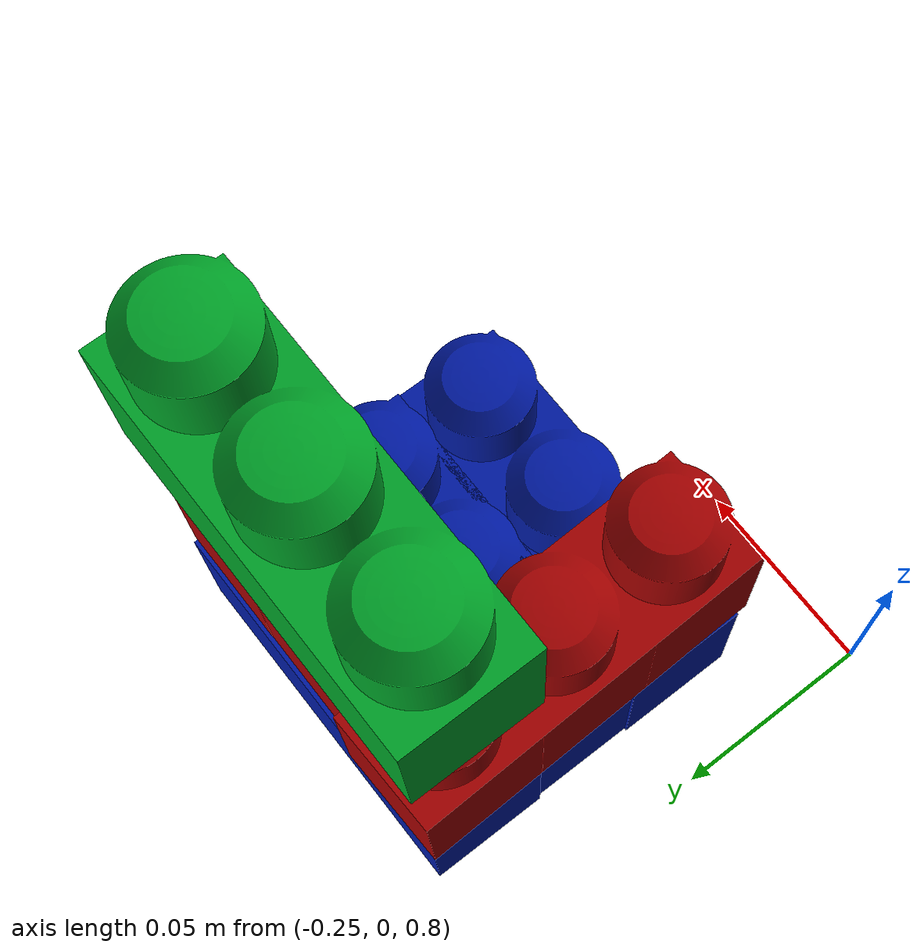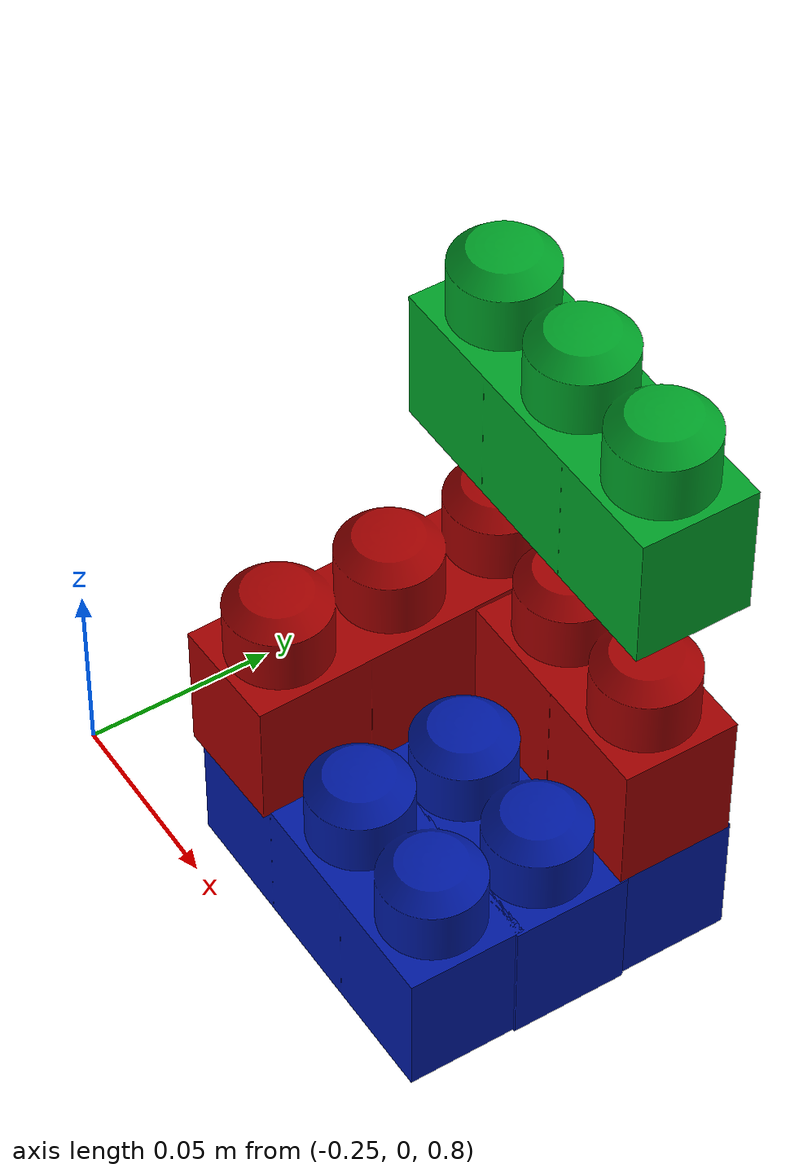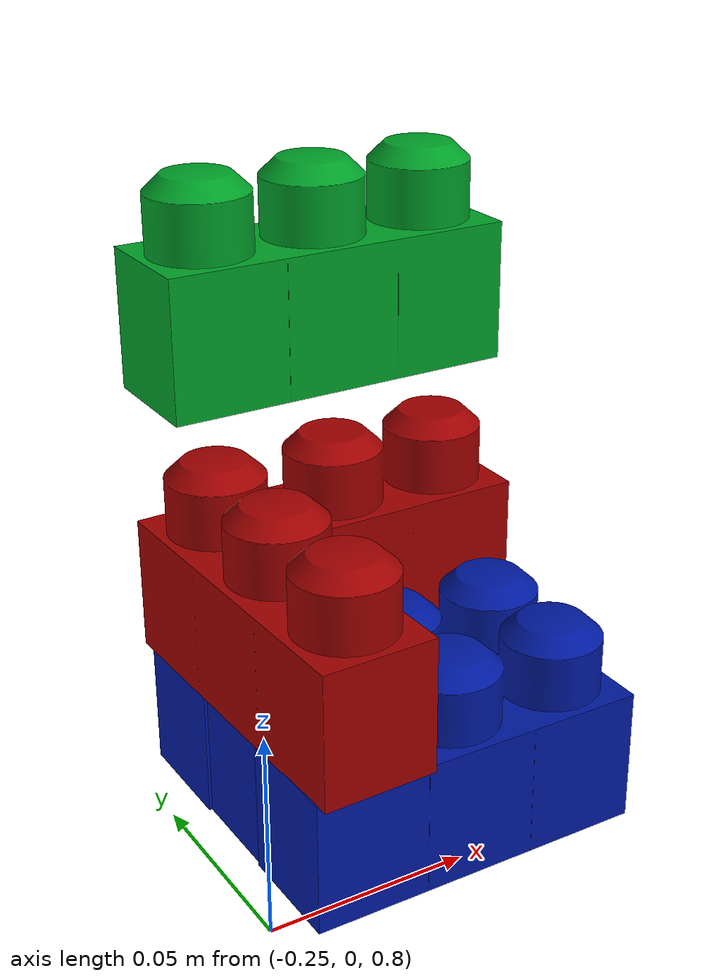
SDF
<sdf version="1.6">
 <world name="default">
  <model name="ground_plane">
   <static>1</static>
   <link name="link">
    <collision name="collision">
     <geometry><plane><normal>0 0 1</normal><size>100 100</size></plane></geometry>
     <surface><friction><ode><mu>100</mu><mu2>50</mu2></ode></friction></surface>
    </collision>
    <visual name="visual">
     <cast_shadows>0</cast_shadows>
     <geometry><plane><normal>0 0 1</normal><size>100 100</size></plane></geometry>
     <material>
      <script><uri>file://media/materials/scripts/gazebo.material</uri><name>Gazebo/Grey</name></script>
     </material>
    </visual>
   </link>
  </model>
  <light name="sun" type="directional">
   <pose>0 0 10 0 -0 0</pose>
   <diffuse>0.8 0.8 0.8 1</diffuse>
   <specular>0.1 0.1 0.1 1</specular>
   <attenuation>
    <range>1000</range>
    <constant>0.9</constant>
    <linear>0.01</linear>
    <quadratic>0.001</quadratic>
   </attenuation>
   <direction>-0.5 0.5 -1</direction>
  </light>
  <gravity>0 0 -9.8</gravity>
  <magnetic_field>6e-06 2.3e-05 -4.2e-05</magnetic_field>
  <atmosphere type="adiabatic"/>
  <physics name="default_physics" default="0" type="ode">
   <max_step_size>0.001</max_step_size>
   <real_time_factor>1</real_time_factor>
   <real_time_update_rate>1000</real_time_update_rate>
  </physics>
  <scene><ambient>0.4 0.4 0.4 1</ambient><background>0.7 0.7 0.7 1</background><shadows>1</shadows></scene>
  <spherical_coordinates>
   <surface_model>EARTH_WGS84</surface_model>
   <latitude_deg>0</latitude_deg>
   <longitude_deg>0</longitude_deg>
   <elevation>0</elevation>
   <heading_deg>0</heading_deg>
  </spherical_coordinates>
  <model name="megabloks1x3_blue">
   <static>1</static>
   <link name="brick">
    <pose>0 0 0.005 0 -0 0</pose>
    <collision name="collision">
     <geometry><mesh><uri>model://megabloks1x3_blue/meshes/model.dae</uri><scale>1 1 1</scale></mesh></geometry>
    </collision>
    <visual name="visual">
     <geometry><mesh><uri>model://megabloks1x3_blue/meshes/model.dae</uri><scale>1 1 1</scale></mesh></geometry>
    </visual>
   </link>
   <pose>-0.179363 0.092965 0.768593 0 -0 0</pose>
  </model>
  <model name="megabloks1x3_blue_clone">
   <static>1</static>
   <link name="brick">
    <pose>0 0 0.005 0 -0 0</pose>
    <collision name="collision">
     <geometry><mesh><uri>model://megabloks1x3_blue/meshes/model.dae</uri><scale>1 1 1</scale></mesh></geometry>
    </collision>
    <visual name="visual">
     <geometry><mesh><uri>model://megabloks1x3_blue/meshes/model.dae</uri><scale>1 1 1</scale></mesh></geometry>
    </visual>
   </link>
   <pose>-0.178531 0.062793 0.768593 0 -0 0</pose>
  </model>
  <model name="megabloks1x3_blue_clone_clone">
   <static>1</static>
   <link name="brick">
    <pose>0 0 0.005 0 -0 0</pose>
    <collision name="collision">
     <geometry><mesh><uri>model://megabloks1x3_blue/meshes/model.dae</uri><scale>1 1 1</scale></mesh></geometry>
    </collision>
    <visual name="visual">
     <geometry><mesh><uri>model://megabloks1x3_blue/meshes/model.dae</uri><scale>1 1 1</scale></mesh></geometry>
    </visual>
   </link>
   <pose>-0.179174 0.033743 0.768593 0 -0 0</pose>
  </model>
  <model name="megabloks1x3_red">
   <static>1</static>
   <link name="brick">
    <pose>0 0 0.005 0 -0 0</pose>
    <collision name="collision">
     <geometry><mesh><uri>model://megabloks1x3_red/meshes/model.dae</uri><scale>1 1 1</scale></mesh></geometry>
    </collision>
    <visual name="visual">
     <geometry><mesh><uri>model://megabloks1x3_red/meshes/model.dae</uri><scale>1 1 1</scale></mesh></geometry>
    </visual>
   </link>
   <pose>-0.21323 0.061786 0.805187 0 0 -1.54306</pose>
  </model>
  <model name="megabloks1x2_red">
   <static>1</static>
   <link name="brick">
    <pose>0 0 0.005 0 -0 0</pose>
    <collision name="collision">
     <geometry><mesh><uri>model://megabloks1x2_red/meshes/model.dae</uri><scale>1 1 1</scale></mesh></geometry>
    </collision>
    <visual name="visual">
     <geometry><mesh><uri>model://megabloks1x2_red/meshes/model.dae</uri><scale>1 1 1</scale></mesh></geometry>
    </visual>
   </link>
   <pose>-0.164388 0.092101 0.807799 0 -0 0</pose>
  </model>
  <model name="megabloks1x3_green">
   <static>1</static>
   <link name="brick">
    <pose>0 0 0.005 0 -0 0</pose>
    <collision name="collision">
     <geometry><mesh><uri>model://megabloks1x3_green/meshes/model.dae</uri><scale>1 1 1</scale></mesh></geometry>
    </collision>
    <visual name="visual">
     <geometry><mesh><uri>model://megabloks1x3_green/meshes/model.dae</uri><scale>1 1 1</scale></mesh></geometry>
    </visual>
   </link>
   <pose>-0.181774 0.09498 0.879558 0 -0 0</pose>
  </model>
 </world>
</sdf>
